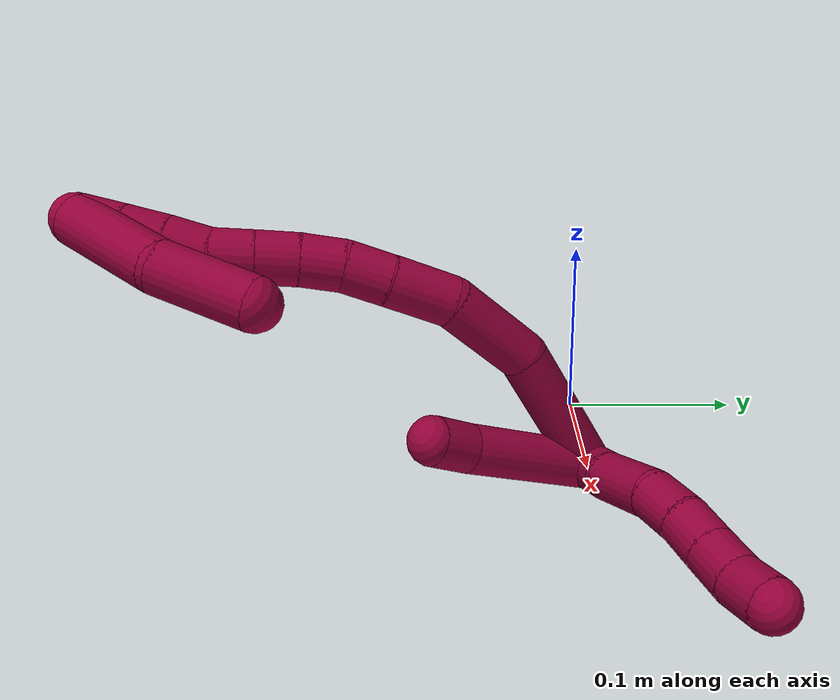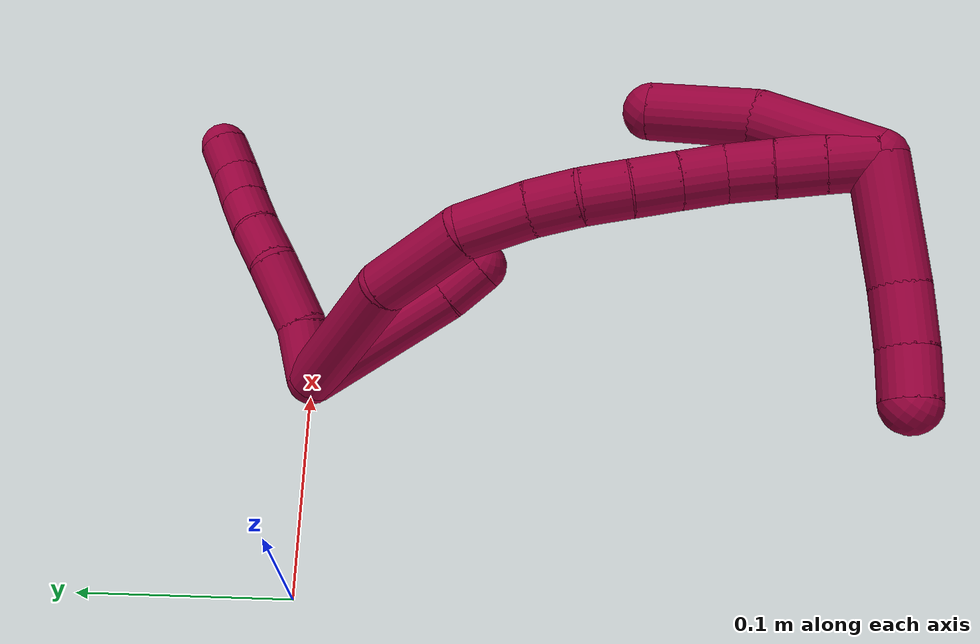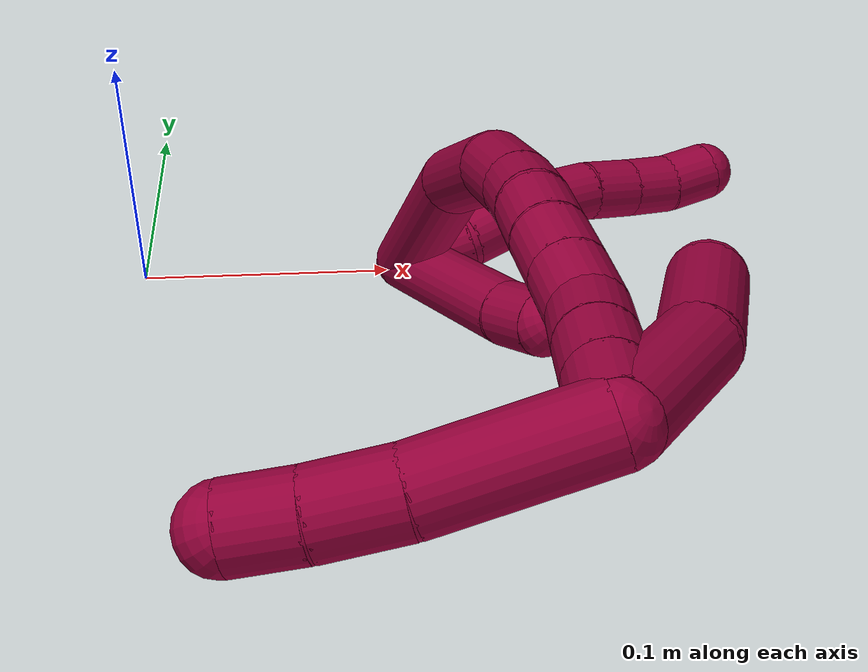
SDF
<sdf version="1.7">
 <world name="default">
  <model name="8">
   <static>0</static>
   <link name="8">
    <collision name="collision-cylinder-e_1_2_8">
     <pose>0.003492 0.011146 -0.00699 -2.13092 0.259415 -0.463082</pose>
     <geometry><cylinder><radius>0.0125</radius><length>0.027224</length></cylinder></geometry>
     <surface>
      <friction><ode><mu>1.16</mu><mu2>1.16</mu2><slip1>0</slip1><slip2>0</slip2></ode></friction>
      <contact><ode><kp>1e+06</kp><kd>1</kd><max_vel>0</max_vel><min_depth>0.001</min_depth></ode></contact>
     </surface>
    </collision>
    <visual name="visual-cylinder-e_1_2_8">
     <pose>0.003492 0.011146 -0.00699 -2.13092 0.259415 -0.463082</pose>
     <geometry><cylinder><radius>0.0125</radius><length>0.027224</length></cylinder></geometry>
     <material><ambient>0.584314 0 0.227451 1</ambient></material>
    </visual>
    <collision name="collision-cylinder-e_2_8_9">
     <pose>0.014422 0.037791 -0.020208 -1.9529 0.418991 -0.609554</pose>
     <geometry><cylinder><radius>0.0125</radius><length>0.03657</length></cylinder></geometry>
     <surface>
      <friction><ode><mu>1.16</mu><mu2>1.16</mu2><slip1>0</slip1><slip2>0</slip2></ode></friction>
      <contact><ode><kp>1e+06</kp><kd>1</kd><max_vel>0</max_vel><min_depth>0.001</min_depth></ode></contact>
     </surface>
    </collision>
    <visual name="visual-cylinder-e_2_8_9">
     <pose>0.014422 0.037791 -0.020208 -1.9529 0.418991 -0.609554</pose>
     <geometry><cylinder><radius>0.0125</radius><length>0.03657</length></cylinder></geometry>
     <material><ambient>0.584314 0 0.227451 1</ambient></material>
    </visual>
    <collision name="collision-cylinder-e_3_9_10">
     <pose>0.024931 0.064509 -0.028159 -1.72314 0.264123 -0.307135</pose>
     <geometry><cylinder><radius>0.0125</radius><length>0.023517</length></cylinder></geometry>
     <surface>
      <friction><ode><mu>1.16</mu><mu2>1.16</mu2><slip1>0</slip1><slip2>0</slip2></ode></friction>
      <contact><ode><kp>1e+06</kp><kd>1</kd><max_vel>0</max_vel><min_depth>0.001</min_depth></ode></contact>
     </surface>
    </collision>
    <visual name="visual-cylinder-e_3_9_10">
     <pose>0.024931 0.064509 -0.028159 -1.72314 0.264123 -0.307135</pose>
     <geometry><cylinder><radius>0.0125</radius><length>0.023517</length></cylinder></geometry>
     <material><ambient>0.584314 0 0.227451 1</ambient></material>
    </visual>
    <collision name="collision-cylinder-e_4_10_11">
     <pose>0.029495 0.086312 -0.030925 -1.66912 0.139552 -0.15394</pose>
     <geometry><cylinder><radius>0.0125</radius><length>0.021478</length></cylinder></geometry>
     <surface>
      <friction><ode><mu>1.16</mu><mu2>1.16</mu2><slip1>0</slip1><slip2>0</slip2></ode></friction>
      <contact><ode><kp>1e+06</kp><kd>1</kd><max_vel>0</max_vel><min_depth>0.001</min_depth></ode></contact>
     </surface>
    </collision>
    <visual name="visual-cylinder-e_4_10_11">
     <pose>0.029495 0.086312 -0.030925 -1.66912 0.139552 -0.15394</pose>
     <geometry><cylinder><radius>0.0125</radius><length>0.021478</length></cylinder></geometry>
     <material><ambient>0.584314 0 0.227451 1</ambient></material>
    </visual>
    <collision name="collision-cylinder-e_5_11_12">
     <pose>0.032515 0.107004 -0.033672 -1.73767 0.147769 -0.174615</pose>
     <geometry><cylinder><radius>0.0125</radius><length>0.020728</length></cylinder></geometry>
     <surface>
      <friction><ode><mu>1.16</mu><mu2>1.16</mu2><slip1>0</slip1><slip2>0</slip2></ode></friction>
      <contact><ode><kp>1e+06</kp><kd>1</kd><max_vel>0</max_vel><min_depth>0.001</min_depth></ode></contact>
     </surface>
    </collision>
    <visual name="visual-cylinder-e_5_11_12">
     <pose>0.032515 0.107004 -0.033672 -1.73767 0.147769 -0.174615</pose>
     <geometry><cylinder><radius>0.0125</radius><length>0.020728</length></cylinder></geometry>
     <material><ambient>0.584314 0 0.227451 1</ambient></material>
    </visual>
    <collision name="collision-cylinder-e_6_12_6">
     <pose>0.03702 0.126496 -0.038197 -1.86294 0.295216 -0.394764</pose>
     <geometry><cylinder><radius>0.0125</radius><length>0.020482</length></cylinder></geometry>
     <surface>
      <friction><ode><mu>1.16</mu><mu2>1.16</mu2><slip1>0</slip1><slip2>0</slip2></ode></friction>
      <contact><ode><kp>1e+06</kp><kd>1</kd><max_vel>0</max_vel><min_depth>0.001</min_depth></ode></contact>
     </surface>
    </collision>
    <visual name="visual-cylinder-e_6_12_6">
     <pose>0.03702 0.126496 -0.038197 -1.86294 0.295216 -0.394764</pose>
     <geometry><cylinder><radius>0.0125</radius><length>0.020482</length></cylinder></geometry>
     <material><ambient>0.584314 0 0.227451 1</ambient></material>
    </visual>
    <collision name="collision-cylinder-e_1_2_13">
     <pose>-0.021147 5.1e-05 -0.03292 -3.14004 -0.570998 3.13631</pose>
     <geometry><cylinder><radius>0.0125</radius><length>0.078253</length></cylinder></geometry>
     <surface>
      <friction><ode><mu>1.16</mu><mu2>1.16</mu2><slip1>0</slip1><slip2>0</slip2></ode></friction>
      <contact><ode><kp>1e+06</kp><kd>1</kd><max_vel>0</max_vel><min_depth>0.001</min_depth></ode></contact>
     </surface>
    </collision>
    <visual name="visual-cylinder-e_1_2_13">
     <pose>-0.021147 5.1e-05 -0.03292 -3.14004 -0.570998 3.13631</pose>
     <geometry><cylinder><radius>0.0125</radius><length>0.078253</length></cylinder></geometry>
     <material><ambient>0.584314 0 0.227451 1</ambient></material>
    </visual>
    <collision name="collision-cylinder-e_2_13_5">
     <pose>-0.047023 0.000804 -0.075605 -3.06982 -0.449958 2.83038</pose>
     <geometry><cylinder><radius>0.0125</radius><length>0.021747</length></cylinder></geometry>
     <surface>
      <friction><ode><mu>1.16</mu><mu2>1.16</mu2><slip1>0</slip1><slip2>0</slip2></ode></friction>
      <contact><ode><kp>1e+06</kp><kd>1</kd><max_vel>0</max_vel><min_depth>0.001</min_depth></ode></contact>
     </surface>
    </collision>
    <visual name="visual-cylinder-e_2_13_5">
     <pose>-0.047023 0.000804 -0.075605 -3.06982 -0.449958 2.83038</pose>
     <geometry><cylinder><radius>0.0125</radius><length>0.021747</length></cylinder></geometry>
     <material><ambient>0.584314 0 0.227451 1</ambient></material>
    </visual>
    <collision name="collision-cylinder-e_1_2_14">
     <pose>0.002454 -0.011681 -0.037225 2.83753 0.062807 0.404465</pose>
     <geometry><cylinder><radius>0.0125</radius><length>0.078184</length></cylinder></geometry>
     <surface>
      <friction><ode><mu>1.16</mu><mu2>1.16</mu2><slip1>0</slip1><slip2>0</slip2></ode></friction>
      <contact><ode><kp>1e+06</kp><kd>1</kd><max_vel>0</max_vel><min_depth>0.001</min_depth></ode></contact>
     </surface>
    </collision>
    <visual name="visual-cylinder-e_1_2_14">
     <pose>0.002454 -0.011681 -0.037225 2.83753 0.062807 0.404465</pose>
     <geometry><cylinder><radius>0.0125</radius><length>0.078184</length></cylinder></geometry>
     <material><ambient>0.584314 0 0.227451 1</ambient></material>
    </visual>
    <collision name="collision-cylinder-e_2_14_15">
     <pose>-0.001381 -0.029944 -0.096458 2.85098 -0.267195 -1.48578</pose>
     <geometry><cylinder><radius>0.0125</radius><length>0.04763</length></cylinder></geometry>
     <surface>
      <friction><ode><mu>1.16</mu><mu2>1.16</mu2><slip1>0</slip1><slip2>0</slip2></ode></friction>
      <contact><ode><kp>1e+06</kp><kd>1</kd><max_vel>0</max_vel><min_depth>0.001</min_depth></ode></contact>
     </surface>
    </collision>
    <visual name="visual-cylinder-e_2_14_15">
     <pose>-0.001381 -0.029944 -0.096458 2.85098 -0.267195 -1.48578</pose>
     <geometry><cylinder><radius>0.0125</radius><length>0.04763</length></cylinder></geometry>
     <material><ambient>0.584314 0 0.227451 1</ambient></material>
    </visual>
    <collision name="collision-cylinder-e_3_15_16">
     <pose>-0.016677 -0.041087 -0.130704 2.78487 -0.603758 -2.09204</pose>
     <geometry><cylinder><radius>0.0125</radius><length>0.031735</length></cylinder></geometry>
     <surface>
      <friction><ode><mu>1.16</mu><mu2>1.16</mu2><slip1>0</slip1><slip2>0</slip2></ode></friction>
      <contact><ode><kp>1e+06</kp><kd>1</kd><max_vel>0</max_vel><min_depth>0.001</min_depth></ode></contact>
     </surface>
    </collision>
    <visual name="visual-cylinder-e_3_15_16">
     <pose>-0.016677 -0.041087 -0.130704 2.78487 -0.603758 -2.09204</pose>
     <geometry><cylinder><radius>0.0125</radius><length>0.031735</length></cylinder></geometry>
     <material><ambient>0.584314 0 0.227451 1</ambient></material>
    </visual>
    <collision name="collision-cylinder-e_4_16_17">
     <pose>-0.032165 -0.049496 -0.150777 2.685 -0.638633 -1.91648</pose>
     <geometry><cylinder><radius>0.0125</radius><length>0.021738</length></cylinder></geometry>
     <surface>
      <friction><ode><mu>1.16</mu><mu2>1.16</mu2><slip1>0</slip1><slip2>0</slip2></ode></friction>
      <contact><ode><kp>1e+06</kp><kd>1</kd><max_vel>0</max_vel><min_depth>0.001</min_depth></ode></contact>
     </surface>
    </collision>
    <visual name="visual-cylinder-e_4_16_17">
     <pose>-0.032165 -0.049496 -0.150777 2.685 -0.638633 -1.91648</pose>
     <geometry><cylinder><radius>0.0125</radius><length>0.021738</length></cylinder></geometry>
     <material><ambient>0.584314 0 0.227451 1</ambient></material>
    </visual>
    <collision name="collision-cylinder-e_5_17_18">
     <pose>-0.046022 -0.056161 -0.165007 2.72664 -0.812392 -2.2313</pose>
     <geometry><cylinder><radius>0.0125</radius><length>0.020328</length></cylinder></geometry>
     <surface>
      <friction><ode><mu>1.16</mu><mu2>1.16</mu2><slip1>0</slip1><slip2>0</slip2></ode></friction>
      <contact><ode><kp>1e+06</kp><kd>1</kd><max_vel>0</max_vel><min_depth>0.001</min_depth></ode></contact>
     </surface>
    </collision>
    <visual name="visual-cylinder-e_5_17_18">
     <pose>-0.046022 -0.056161 -0.165007 2.72664 -0.812392 -2.2313</pose>
     <geometry><cylinder><radius>0.0125</radius><length>0.020328</length></cylinder></geometry>
     <material><ambient>0.584314 0 0.227451 1</ambient></material>
    </visual>
    <collision name="collision-cylinder-e_6_18_19">
     <pose>-0.061176 -0.061112 -0.17743 2.80146 -0.882744 -2.44434</pose>
     <geometry><cylinder><radius>0.0125</radius><length>0.020133</length></cylinder></geometry>
     <surface>
      <friction><ode><mu>1.16</mu><mu2>1.16</mu2><slip1>0</slip1><slip2>0</slip2></ode></friction>
      <contact><ode><kp>1e+06</kp><kd>1</kd><max_vel>0</max_vel><min_depth>0.001</min_depth></ode></contact>
     </surface>
    </collision>
    <visual name="visual-cylinder-e_6_18_19">
     <pose>-0.061176 -0.061112 -0.17743 2.80146 -0.882744 -2.44434</pose>
     <geometry><cylinder><radius>0.0125</radius><length>0.020133</length></cylinder></geometry>
     <material><ambient>0.584314 0 0.227451 1</ambient></material>
    </visual>
    <collision name="collision-cylinder-e_7_19_20">
     <pose>-0.07676 -0.065388 -0.189341 2.79225 -0.894761 -2.43674</pose>
     <geometry><cylinder><radius>0.0125</radius><length>0.020018</length></cylinder></geometry>
     <surface>
      <friction><ode><mu>1.16</mu><mu2>1.16</mu2><slip1>0</slip1><slip2>0</slip2></ode></friction>
      <contact><ode><kp>1e+06</kp><kd>1</kd><max_vel>0</max_vel><min_depth>0.001</min_depth></ode></contact>
     </surface>
    </collision>
    <visual name="visual-cylinder-e_7_19_20">
     <pose>-0.07676 -0.065388 -0.189341 2.79225 -0.894761 -2.43674</pose>
     <geometry><cylinder><radius>0.0125</radius><length>0.020018</length></cylinder></geometry>
     <material><ambient>0.584314 0 0.227451 1</ambient></material>
    </visual>
    <collision name="collision-cylinder-e_8_20_21">
     <pose>-0.090916 -0.072012 -0.201521 2.52318 -0.687824 -1.68487</pose>
     <geometry><cylinder><radius>0.0125</radius><length>0.020002</length></cylinder></geometry>
     <surface>
      <friction><ode><mu>1.16</mu><mu2>1.16</mu2><slip1>0</slip1><slip2>0</slip2></ode></friction>
      <contact><ode><kp>1e+06</kp><kd>1</kd><max_vel>0</max_vel><min_depth>0.001</min_depth></ode></contact>
     </surface>
    </collision>
    <visual name="visual-cylinder-e_8_20_21">
     <pose>-0.090916 -0.072012 -0.201521 2.52318 -0.687824 -1.68487</pose>
     <geometry><cylinder><radius>0.0125</radius><length>0.020002</length></cylinder></geometry>
     <material><ambient>0.584314 0 0.227451 1</ambient></material>
    </visual>
    <collision name="collision-cylinder-e_9_21_22">
     <pose>-0.103934 -0.080674 -0.214038 2.54964 -0.727031 -1.79021</pose>
     <geometry><cylinder><radius>0.0125</radius><length>0.020065</length></cylinder></geometry>
     <surface>
      <friction><ode><mu>1.16</mu><mu2>1.16</mu2><slip1>0</slip1><slip2>0</slip2></ode></friction>
      <contact><ode><kp>1e+06</kp><kd>1</kd><max_vel>0</max_vel><min_depth>0.001</min_depth></ode></contact>
     </surface>
    </collision>
    <visual name="visual-cylinder-e_9_21_22">
     <pose>-0.103934 -0.080674 -0.214038 2.54964 -0.727031 -1.79021</pose>
     <geometry><cylinder><radius>0.0125</radius><length>0.020065</length></cylinder></geometry>
     <material><ambient>0.584314 0 0.227451 1</ambient></material>
    </visual>
    <collision name="collision-cylinder-e_10_22_1">
     <pose>-0.117405 -0.089113 -0.226365 2.53288 -0.740466 -1.78081</pose>
     <geometry><cylinder><radius>0.0125</radius><length>0.020167</length></cylinder></geometry>
     <surface>
      <friction><ode><mu>1.16</mu><mu2>1.16</mu2><slip1>0</slip1><slip2>0</slip2></ode></friction>
      <contact><ode><kp>1e+06</kp><kd>1</kd><max_vel>0</max_vel><min_depth>0.001</min_depth></ode></contact>
     </surface>
    </collision>
    <visual name="visual-cylinder-e_10_22_1">
     <pose>-0.117405 -0.089113 -0.226365 2.53288 -0.740466 -1.78081</pose>
     <geometry><cylinder><radius>0.0125</radius><length>0.020167</length></cylinder></geometry>
     <material><ambient>0.584314 0 0.227451 1</ambient></material>
    </visual>
    <collision name="collision-cylinder-e_1_1_23">
     <pose>-0.129487 -0.113798 -0.216018 0.892777 -0.198612 -0.095299</pose>
     <geometry><cylinder><radius>0.0125</radius><length>0.053513</length></cylinder></geometry>
     <surface>
      <friction><ode><mu>1.16</mu><mu2>1.16</mu2><slip1>0</slip1><slip2>0</slip2></ode></friction>
      <contact><ode><kp>1e+06</kp><kd>1</kd><max_vel>0</max_vel><min_depth>0.001</min_depth></ode></contact>
     </surface>
    </collision>
    <visual name="visual-cylinder-e_1_1_23">
     <pose>-0.129487 -0.113798 -0.216018 0.892777 -0.198612 -0.095299</pose>
     <geometry><cylinder><radius>0.0125</radius><length>0.053513</length></cylinder></geometry>
     <material><ambient>0.584314 0 0.227451 1</ambient></material>
    </visual>
    <collision name="collision-cylinder-e_2_23_24">
     <pose>-0.136082 -0.144154 -0.191759 0.904478 -0.103784 -0.050455</pose>
     <geometry><cylinder><radius>0.0125</radius><length>0.025392</length></cylinder></geometry>
     <surface>
      <friction><ode><mu>1.16</mu><mu2>1.16</mu2><slip1>0</slip1><slip2>0</slip2></ode></friction>
      <contact><ode><kp>1e+06</kp><kd>1</kd><max_vel>0</max_vel><min_depth>0.001</min_depth></ode></contact>
     </surface>
    </collision>
    <visual name="visual-cylinder-e_2_23_24">
     <pose>-0.136082 -0.144154 -0.191759 0.904478 -0.103784 -0.050455</pose>
     <geometry><cylinder><radius>0.0125</radius><length>0.025392</length></cylinder></geometry>
     <material><ambient>0.584314 0 0.227451 1</ambient></material>
    </visual>
    <collision name="collision-cylinder-e_3_24_4">
     <pose>-0.137795 -0.162246 -0.17729 0.886282 -0.037724 -0.017906</pose>
     <geometry><cylinder><radius>0.0125</radius><length>0.021094</length></cylinder></geometry>
     <surface>
      <friction><ode><mu>1.16</mu><mu2>1.16</mu2><slip1>0</slip1><slip2>0</slip2></ode></friction>
      <contact><ode><kp>1e+06</kp><kd>1</kd><max_vel>0</max_vel><min_depth>0.001</min_depth></ode></contact>
     </surface>
    </collision>
    <visual name="visual-cylinder-e_3_24_4">
     <pose>-0.137795 -0.162246 -0.17729 0.886282 -0.037724 -0.017906</pose>
     <geometry><cylinder><radius>0.0125</radius><length>0.021094</length></cylinder></geometry>
     <material><ambient>0.584314 0 0.227451 1</ambient></material>
    </visual>
    <collision name="collision-cylinder-e_1_1_25">
     <pose>-0.111189 -0.070948 -0.224446 -1.22708 0.500299 -0.35604</pose>
     <geometry><cylinder><radius>0.0125</radius><length>0.054282</length></cylinder></geometry>
     <surface>
      <friction><ode><mu>1.16</mu><mu2>1.16</mu2><slip1>0</slip1><slip2>0</slip2></ode></friction>
      <contact><ode><kp>1e+06</kp><kd>1</kd><max_vel>0</max_vel><min_depth>0.001</min_depth></ode></contact>
     </surface>
    </collision>
    <visual name="visual-cylinder-e_1_1_25">
     <pose>-0.111189 -0.070948 -0.224446 -1.22708 0.500299 -0.35604</pose>
     <geometry><cylinder><radius>0.0125</radius><length>0.054282</length></cylinder></geometry>
     <material><ambient>0.584314 0 0.227451 1</ambient></material>
    </visual>
    <collision name="collision-cylinder-e_2_25_3">
     <pose>-0.084585 -0.034114 -0.205006 -0.900912 0.636369 -0.315929</pose>
     <geometry><cylinder><radius>0.0125</radius><length>0.045718</length></cylinder></geometry>
     <surface>
      <friction><ode><mu>1.16</mu><mu2>1.16</mu2><slip1>0</slip1><slip2>0</slip2></ode></friction>
      <contact><ode><kp>1e+06</kp><kd>1</kd><max_vel>0</max_vel><min_depth>0.001</min_depth></ode></contact>
     </surface>
    </collision>
    <visual name="visual-cylinder-e_2_25_3">
     <pose>-0.084585 -0.034114 -0.205006 -0.900912 0.636369 -0.315929</pose>
     <geometry><cylinder><radius>0.0125</radius><length>0.045718</length></cylinder></geometry>
     <material><ambient>0.584314 0 0.227451 1</ambient></material>
    </visual>
    <collision name="collision-sphere-3">
     <pose>-0.071 -0.019703 -0.193591 0 -0 0</pose>
     <geometry><sphere><radius>0.0125</radius></sphere></geometry>
     <surface>
      <friction><ode><mu>1.16</mu><mu2>1.16</mu2><slip1>0</slip1><slip2>0</slip2></ode></friction>
      <contact><ode><kp>1e+06</kp><kd>1</kd><max_vel>0</max_vel><min_depth>0.001</min_depth></ode></contact>
     </surface>
    </collision>
    <visual name="visual-sphere-3">
     <pose>-0.071 -0.019703 -0.193591 0 -0 0</pose>
     <geometry><sphere><radius>0.0125</radius></sphere></geometry>
     <material><ambient>0.584314 0 0.227451 1</ambient></material>
    </visual>
    <collision name="collision-sphere-25">
     <pose>-0.098169 -0.048526 -0.216421 0 -0 0</pose>
     <geometry><sphere><radius>0.0125</radius></sphere></geometry>
     <surface>
      <friction><ode><mu>1.16</mu><mu2>1.16</mu2><slip1>0</slip1><slip2>0</slip2></ode></friction>
      <contact><ode><kp>1e+06</kp><kd>1</kd><max_vel>0</max_vel><min_depth>0.001</min_depth></ode></contact>
     </surface>
    </collision>
    <visual name="visual-sphere-25">
     <pose>-0.098169 -0.048526 -0.216421 0 -0 0</pose>
     <geometry><sphere><radius>0.0125</radius></sphere></geometry>
     <material><ambient>0.584314 0 0.227451 1</ambient></material>
    </visual>
    <collision name="collision-sphere-4">
     <pose>-0.138193 -0.170411 -0.170626 0 -0 0</pose>
     <geometry><sphere><radius>0.0125</radius></sphere></geometry>
     <surface>
      <friction><ode><mu>1.16</mu><mu2>1.16</mu2><slip1>0</slip1><slip2>0</slip2></ode></friction>
      <contact><ode><kp>1e+06</kp><kd>1</kd><max_vel>0</max_vel><min_depth>0.001</min_depth></ode></contact>
     </surface>
    </collision>
    <visual name="visual-sphere-4">
     <pose>-0.138193 -0.170411 -0.170626 0 -0 0</pose>
     <geometry><sphere><radius>0.0125</radius></sphere></geometry>
     <material><ambient>0.584314 0 0.227451 1</ambient></material>
    </visual>
    <collision name="collision-sphere-24">
     <pose>-0.137397 -0.154081 -0.183954 0 -0 0</pose>
     <geometry><sphere><radius>0.0125</radius></sphere></geometry>
     <surface>
      <friction><ode><mu>1.16</mu><mu2>1.16</mu2><slip1>0</slip1><slip2>0</slip2></ode></friction>
      <contact><ode><kp>1e+06</kp><kd>1</kd><max_vel>0</max_vel><min_depth>0.001</min_depth></ode></contact>
     </surface>
    </collision>
    <visual name="visual-sphere-24">
     <pose>-0.137397 -0.154081 -0.183954 0 -0 0</pose>
     <geometry><sphere><radius>0.0125</radius></sphere></geometry>
     <material><ambient>0.584314 0 0.227451 1</ambient></material>
    </visual>
    <collision name="collision-sphere-23">
     <pose>-0.134766 -0.134227 -0.199564 0 -0 0</pose>
     <geometry><sphere><radius>0.0125</radius></sphere></geometry>
     <surface>
      <friction><ode><mu>1.16</mu><mu2>1.16</mu2><slip1>0</slip1><slip2>0</slip2></ode></friction>
      <contact><ode><kp>1e+06</kp><kd>1</kd><max_vel>0</max_vel><min_depth>0.001</min_depth></ode></contact>
     </surface>
    </collision>
    <visual name="visual-sphere-23">
     <pose>-0.134766 -0.134227 -0.199564 0 -0 0</pose>
     <geometry><sphere><radius>0.0125</radius></sphere></geometry>
     <material><ambient>0.584314 0 0.227451 1</ambient></material>
    </visual>
    <collision name="collision-sphere-1">
     <pose>-0.124208 -0.093369 -0.232471 0 -0 0</pose>
     <geometry><sphere><radius>0.0125</radius></sphere></geometry>
     <surface>
      <friction><ode><mu>1.16</mu><mu2>1.16</mu2><slip1>0</slip1><slip2>0</slip2></ode></friction>
      <contact><ode><kp>1e+06</kp><kd>1</kd><max_vel>0</max_vel><min_depth>0.001</min_depth></ode></contact>
     </surface>
    </collision>
    <visual name="visual-sphere-1">
     <pose>-0.124208 -0.093369 -0.232471 0 -0 0</pose>
     <geometry><sphere><radius>0.0125</radius></sphere></geometry>
     <material><ambient>0.584314 0 0.227451 1</ambient></material>
    </visual>
    <collision name="collision-sphere-22">
     <pose>-0.110602 -0.084857 -0.220258 0 -0 0</pose>
     <geometry><sphere><radius>0.0125</radius></sphere></geometry>
     <surface>
      <friction><ode><mu>1.16</mu><mu2>1.16</mu2><slip1>0</slip1><slip2>0</slip2></ode></friction>
      <contact><ode><kp>1e+06</kp><kd>1</kd><max_vel>0</max_vel><min_depth>0.001</min_depth></ode></contact>
     </surface>
    </collision>
    <visual name="visual-sphere-22">
     <pose>-0.110602 -0.084857 -0.220258 0 -0 0</pose>
     <geometry><sphere><radius>0.0125</radius></sphere></geometry>
     <material><ambient>0.584314 0 0.227451 1</ambient></material>
    </visual>
    <collision name="collision-sphere-21">
     <pose>-0.097266 -0.076492 -0.207817 0 -0 0</pose>
     <geometry><sphere><radius>0.0125</radius></sphere></geometry>
     <surface>
      <friction><ode><mu>1.16</mu><mu2>1.16</mu2><slip1>0</slip1><slip2>0</slip2></ode></friction>
      <contact><ode><kp>1e+06</kp><kd>1</kd><max_vel>0</max_vel><min_depth>0.001</min_depth></ode></contact>
     </surface>
    </collision>
    <visual name="visual-sphere-21">
     <pose>-0.097266 -0.076492 -0.207817 0 -0 0</pose>
     <geometry><sphere><radius>0.0125</radius></sphere></geometry>
     <material><ambient>0.584314 0 0.227451 1</ambient></material>
    </visual>
    <collision name="collision-sphere-12">
     <pose>0.03404 0.117113 -0.035375 0 -0 0</pose>
     <geometry><sphere><radius>0.0125</radius></sphere></geometry>
     <surface>
      <friction><ode><mu>1.16</mu><mu2>1.16</mu2><slip1>0</slip1><slip2>0</slip2></ode></friction>
      <contact><ode><kp>1e+06</kp><kd>1</kd><max_vel>0</max_vel><min_depth>0.001</min_depth></ode></contact>
     </surface>
    </collision>
    <visual name="visual-sphere-12">
     <pose>0.03404 0.117113 -0.035375 0 -0 0</pose>
     <geometry><sphere><radius>0.0125</radius></sphere></geometry>
     <material><ambient>0.584314 0 0.227451 1</ambient></material>
    </visual>
    <collision name="collision-sphere-11">
     <pose>0.030989 0.096895 -0.031969 0 -0 0</pose>
     <geometry><sphere><radius>0.0125</radius></sphere></geometry>
     <surface>
      <friction><ode><mu>1.16</mu><mu2>1.16</mu2><slip1>0</slip1><slip2>0</slip2></ode></friction>
      <contact><ode><kp>1e+06</kp><kd>1</kd><max_vel>0</max_vel><min_depth>0.001</min_depth></ode></contact>
     </surface>
    </collision>
    <visual name="visual-sphere-11">
     <pose>0.030989 0.096895 -0.031969 0 -0 0</pose>
     <geometry><sphere><radius>0.0125</radius></sphere></geometry>
     <material><ambient>0.584314 0 0.227451 1</ambient></material>
    </visual>
    <collision name="collision-sphere-10">
     <pose>0.028001 0.075729 -0.029881 0 -0 0</pose>
     <geometry><sphere><radius>0.0125</radius></sphere></geometry>
     <surface>
      <friction><ode><mu>1.16</mu><mu2>1.16</mu2><slip1>0</slip1><slip2>0</slip2></ode></friction>
      <contact><ode><kp>1e+06</kp><kd>1</kd><max_vel>0</max_vel><min_depth>0.001</min_depth></ode></contact>
     </surface>
    </collision>
    <visual name="visual-sphere-10">
     <pose>0.028001 0.075729 -0.029881 0 -0 0</pose>
     <geometry><sphere><radius>0.0125</radius></sphere></geometry>
     <material><ambient>0.584314 0 0.227451 1</ambient></material>
    </visual>
    <collision name="collision-sphere-9">
     <pose>0.021862 0.05329 -0.026436 0 -0 0</pose>
     <geometry><sphere><radius>0.0125</radius></sphere></geometry>
     <surface>
      <friction><ode><mu>1.16</mu><mu2>1.16</mu2><slip1>0</slip1><slip2>0</slip2></ode></friction>
      <contact><ode><kp>1e+06</kp><kd>1</kd><max_vel>0</max_vel><min_depth>0.001</min_depth></ode></contact>
     </surface>
    </collision>
    <visual name="visual-sphere-9">
     <pose>0.021862 0.05329 -0.026436 0 -0 0</pose>
     <geometry><sphere><radius>0.0125</radius></sphere></geometry>
     <material><ambient>0.584314 0 0.227451 1</ambient></material>
    </visual>
    <collision name="collision-sphere-2">
     <geometry><sphere><radius>0.0125</radius></sphere></geometry>
     <surface>
      <friction><ode><mu>1.16</mu><mu2>1.16</mu2><slip1>0</slip1><slip2>0</slip2></ode></friction>
      <contact><ode><kp>1e+06</kp><kd>1</kd><max_vel>0</max_vel><min_depth>0.001</min_depth></ode></contact>
     </surface>
    </collision>
    <visual name="visual-sphere-2">
     <geometry><sphere><radius>0.0125</radius></sphere></geometry>
     <material><ambient>0.584314 0 0.227451 1</ambient></material>
    </visual>
    <collision name="collision-sphere-19">
     <pose>-0.068952 -0.063245 -0.183456 0 -0 0</pose>
     <geometry><sphere><radius>0.0125</radius></sphere></geometry>
     <surface>
      <friction><ode><mu>1.16</mu><mu2>1.16</mu2><slip1>0</slip1><slip2>0</slip2></ode></friction>
      <contact><ode><kp>1e+06</kp><kd>1</kd><max_vel>0</max_vel><min_depth>0.001</min_depth></ode></contact>
     </surface>
    </collision>
    <visual name="visual-sphere-19">
     <pose>-0.068952 -0.063245 -0.183456 0 -0 0</pose>
     <geometry><sphere><radius>0.0125</radius></sphere></geometry>
     <material><ambient>0.584314 0 0.227451 1</ambient></material>
    </visual>
    <collision name="collision-sphere-8">
     <pose>0.006983 0.022292 -0.01398 0 -0 0</pose>
     <geometry><sphere><radius>0.0125</radius></sphere></geometry>
     <surface>
      <friction><ode><mu>1.16</mu><mu2>1.16</mu2><slip1>0</slip1><slip2>0</slip2></ode></friction>
      <contact><ode><kp>1e+06</kp><kd>1</kd><max_vel>0</max_vel><min_depth>0.001</min_depth></ode></contact>
     </surface>
    </collision>
    <visual name="visual-sphere-8">
     <pose>0.006983 0.022292 -0.01398 0 -0 0</pose>
     <geometry><sphere><radius>0.0125</radius></sphere></geometry>
     <material><ambient>0.584314 0 0.227451 1</ambient></material>
    </visual>
    <collision name="collision-sphere-6">
     <pose>0.04 0.135879 -0.041019 0 -0 0</pose>
     <geometry><sphere><radius>0.0125</radius></sphere></geometry>
     <surface>
      <friction><ode><mu>1.16</mu><mu2>1.16</mu2><slip1>0</slip1><slip2>0</slip2></ode></friction>
      <contact><ode><kp>1e+06</kp><kd>1</kd><max_vel>0</max_vel><min_depth>0.001</min_depth></ode></contact>
     </surface>
    </collision>
    <visual name="visual-sphere-6">
     <pose>0.04 0.135879 -0.041019 0 -0 0</pose>
     <geometry><sphere><radius>0.0125</radius></sphere></geometry>
     <material><ambient>0.584314 0 0.227451 1</ambient></material>
    </visual>
    <collision name="collision-sphere-13">
     <pose>-0.042294 0.000102 -0.065839 0 -0 0</pose>
     <geometry><sphere><radius>0.0125</radius></sphere></geometry>
     <surface>
      <friction><ode><mu>1.16</mu><mu2>1.16</mu2><slip1>0</slip1><slip2>0</slip2></ode></friction>
      <contact><ode><kp>1e+06</kp><kd>1</kd><max_vel>0</max_vel><min_depth>0.001</min_depth></ode></contact>
     </surface>
    </collision>
    <visual name="visual-sphere-13">
     <pose>-0.042294 0.000102 -0.065839 0 -0 0</pose>
     <geometry><sphere><radius>0.0125</radius></sphere></geometry>
     <material><ambient>0.584314 0 0.227451 1</ambient></material>
    </visual>
    <collision name="collision-sphere-5">
     <pose>-0.051752 0.001506 -0.085371 0 -0 0</pose>
     <geometry><sphere><radius>0.0125</radius></sphere></geometry>
     <surface>
      <friction><ode><mu>1.16</mu><mu2>1.16</mu2><slip1>0</slip1><slip2>0</slip2></ode></friction>
      <contact><ode><kp>1e+06</kp><kd>1</kd><max_vel>0</max_vel><min_depth>0.001</min_depth></ode></contact>
     </surface>
    </collision>
    <visual name="visual-sphere-5">
     <pose>-0.051752 0.001506 -0.085371 0 -0 0</pose>
     <geometry><sphere><radius>0.0125</radius></sphere></geometry>
     <material><ambient>0.584314 0 0.227451 1</ambient></material>
    </visual>
    <collision name="collision-sphere-14">
     <pose>0.004907 -0.023362 -0.074451 0 -0 0</pose>
     <geometry><sphere><radius>0.0125</radius></sphere></geometry>
     <surface>
      <friction><ode><mu>1.16</mu><mu2>1.16</mu2><slip1>0</slip1><slip2>0</slip2></ode></friction>
      <contact><ode><kp>1e+06</kp><kd>1</kd><max_vel>0</max_vel><min_depth>0.001</min_depth></ode></contact>
     </surface>
    </collision>
    <visual name="visual-sphere-14">
     <pose>0.004907 -0.023362 -0.074451 0 -0 0</pose>
     <geometry><sphere><radius>0.0125</radius></sphere></geometry>
     <material><ambient>0.584314 0 0.227451 1</ambient></material>
    </visual>
    <collision name="collision-sphere-15">
     <pose>-0.007668 -0.036526 -0.118464 0 -0 0</pose>
     <geometry><sphere><radius>0.0125</radius></sphere></geometry>
     <surface>
      <friction><ode><mu>1.16</mu><mu2>1.16</mu2><slip1>0</slip1><slip2>0</slip2></ode></friction>
      <contact><ode><kp>1e+06</kp><kd>1</kd><max_vel>0</max_vel><min_depth>0.001</min_depth></ode></contact>
     </surface>
    </collision>
    <visual name="visual-sphere-15">
     <pose>-0.007668 -0.036526 -0.118464 0 -0 0</pose>
     <geometry><sphere><radius>0.0125</radius></sphere></geometry>
     <material><ambient>0.584314 0 0.227451 1</ambient></material>
    </visual>
    <collision name="collision-sphere-16">
     <pose>-0.025686 -0.045648 -0.142944 0 -0 0</pose>
     <geometry><sphere><radius>0.0125</radius></sphere></geometry>
     <surface>
      <friction><ode><mu>1.16</mu><mu2>1.16</mu2><slip1>0</slip1><slip2>0</slip2></ode></friction>
      <contact><ode><kp>1e+06</kp><kd>1</kd><max_vel>0</max_vel><min_depth>0.001</min_depth></ode></contact>
     </surface>
    </collision>
    <visual name="visual-sphere-16">
     <pose>-0.025686 -0.045648 -0.142944 0 -0 0</pose>
     <geometry><sphere><radius>0.0125</radius></sphere></geometry>
     <material><ambient>0.584314 0 0.227451 1</ambient></material>
    </visual>
    <collision name="collision-sphere-17">
     <pose>-0.038643 -0.053343 -0.15861 0 -0 0</pose>
     <geometry><sphere><radius>0.0125</radius></sphere></geometry>
     <surface>
      <friction><ode><mu>1.16</mu><mu2>1.16</mu2><slip1>0</slip1><slip2>0</slip2></ode></friction>
      <contact><ode><kp>1e+06</kp><kd>1</kd><max_vel>0</max_vel><min_depth>0.001</min_depth></ode></contact>
     </surface>
    </collision>
    <visual name="visual-sphere-17">
     <pose>-0.038643 -0.053343 -0.15861 0 -0 0</pose>
     <geometry><sphere><radius>0.0125</radius></sphere></geometry>
     <material><ambient>0.584314 0 0.227451 1</ambient></material>
    </visual>
    <collision name="collision-sphere-18">
     <pose>-0.0534 -0.05898 -0.171404 0 -0 0</pose>
     <geometry><sphere><radius>0.0125</radius></sphere></geometry>
     <surface>
      <friction><ode><mu>1.16</mu><mu2>1.16</mu2><slip1>0</slip1><slip2>0</slip2></ode></friction>
      <contact><ode><kp>1e+06</kp><kd>1</kd><max_vel>0</max_vel><min_depth>0.001</min_depth></ode></contact>
     </surface>
    </collision>
    <visual name="visual-sphere-18">
     <pose>-0.0534 -0.05898 -0.171404 0 -0 0</pose>
     <geometry><sphere><radius>0.0125</radius></sphere></geometry>
     <material><ambient>0.584314 0 0.227451 1</ambient></material>
    </visual>
    <collision name="collision-sphere-20">
     <pose>-0.084567 -0.067532 -0.195225 0 -0 0</pose>
     <geometry><sphere><radius>0.0125</radius></sphere></geometry>
     <surface>
      <friction><ode><mu>1.16</mu><mu2>1.16</mu2><slip1>0</slip1><slip2>0</slip2></ode></friction>
      <contact><ode><kp>1e+06</kp><kd>1</kd><max_vel>0</max_vel><min_depth>0.001</min_depth></ode></contact>
     </surface>
    </collision>
    <visual name="visual-sphere-20">
     <pose>-0.084567 -0.067532 -0.195225 0 -0 0</pose>
     <geometry><sphere><radius>0.0125</radius></sphere></geometry>
     <material><ambient>0.584314 0 0.227451 1</ambient></material>
    </visual>
    <inertial>
     <pose>-0.0449 -0.029271 -0.117625 0 -0 0</pose>
     <mass>0.75</mass>
     <inertia><ixx>2.5e-05</ixx><ixy>0</ixy><ixz>0</ixz><iyy>2.7e-05</iyy><iyz>0</iyz><izz>2e-06</izz></inertia>
    </inertial>
   </link>
   <pose>0.108246 -0.00035 0.005276 -2.64718 -0.59055 1.64049</pose>
  </model>
 </world>
</sdf>
